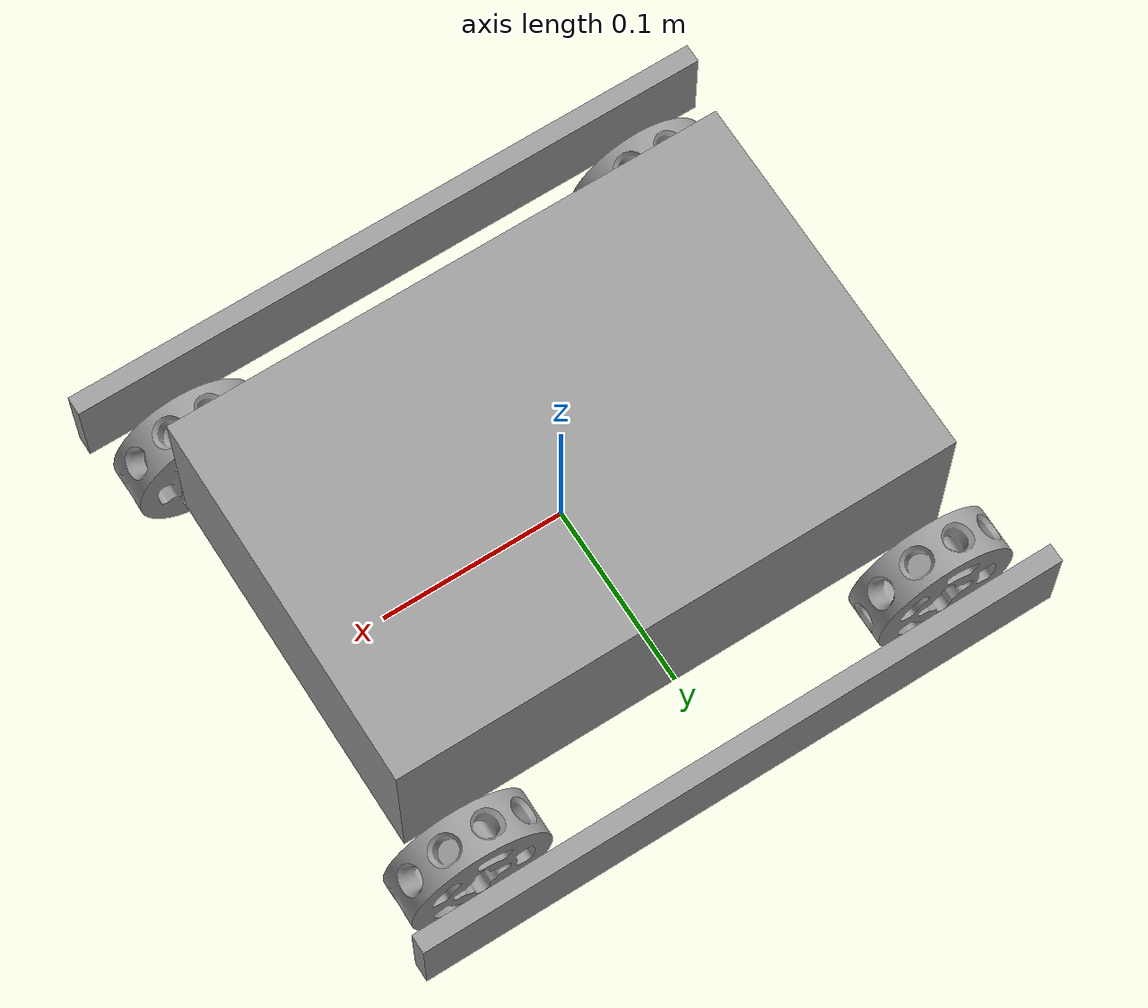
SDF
<?xml version='1.0'?>
<sdf version='1.5'>
  <model name='simple_car'>
    <link name='chasis'>
      <pose frame=''>0 0 0.05 0 -0 0</pose>
      <inertial>
        <mass>1</mass>
        <inertia>
          <ixx>0.166667</ixx>
          <ixy>0</ixy>
          <ixz>0</ixz>
          <iyy>0.166667</iyy>
          <iyz>0</iyz>
          <izz>0.166667</izz>
        </inertia>
        <pose frame=''>0 0 0 0 -0 0</pose>
      </inertial>
      <self_collide>0</self_collide>
      <kinematic>0</kinematic>
      <gravity>1</gravity>
      <visual name='visual'>
        <geometry>
          <box>
            <size>0.3 0.2 0.1</size>
          </box>
        </geometry>
        <material>
          <script>
            <name>Gazebo/Grey</name>
            <uri>file://media/materials/scripts/gazebo.material</uri>
          </script>
          <ambient>0.3 0.3 0.3 1</ambient>
          <diffuse>0.7 0.7 0.7 1</diffuse>
          <specular>0.01 0.01 0.01 1</specular>
          <emissive>0 0 0 1</emissive>
          <shader type='vertex'>
            <normal_map>__default__</normal_map>
          </shader>
        </material>
        <pose frame=''>0 0 0 0 -0 0</pose>
        <cast_shadows>1</cast_shadows>
        <transparency>0</transparency>
      </visual>
      <collision name='collision'>
        <laser_retro>0</laser_retro>
        <max_contacts>10</max_contacts>
        <pose frame=''>0 0 0 0 -0 0</pose>
        <geometry>
          <box>
            <size>0.3 0.2 0.1</size>
          </box>
        </geometry>
      </collision>
    </link>

    <link name='drum_0'>
      <pose frame=''> 0.13 -0.12 0 1.5707 0 0</pose>
      <gravity>1</gravity>
      <self_collide>1</self_collide>
      <kinematic>0</kinematic>
      <inertial>
        <mass>1</mass>
        <inertia>
          <ixx>1</ixx>
          <ixy>0</ixy>
          <ixz>0</ixz>
          <iyy>1</iyy>
          <iyz>0</iyz>
          <izz>1</izz>
        </inertia>
      </inertial>
      <visual name='visual'>
        <pose frame=''>-0.0375 -0.0375 -0.034 0 -0 0</pose>
        <geometry>
          <mesh>
            <uri>model://track_drum/meshes/drum.STL</uri>
            <scale>0.001 0.001 0.001</scale>
          </mesh>
        </geometry>
        <material>
          <lighting>1</lighting>
          <script>
            <uri>file://media/materials/scripts/gazebo.material</uri>
            <name>Gazebo/Grey</name>
          </script>
          <ambient>0.3 0.3 0.3 1</ambient>
          <diffuse>0.7 0.7 0.7 1</diffuse>
          <specular>0.01 0.01 0.01 1</specular>
          <emissive>0 0 0 1</emissive>
          <shader type='vertex'>
            <normal_map>__default__</normal_map>
          </shader>
        </material>
        <cast_shadows>1</cast_shadows>
        <transparency>0</transparency>
      </visual>
      <collision name='collision'>
        <laser_retro>0</laser_retro>
        <max_contacts>20</max_contacts>
        <pose frame=''>-0.0375 -0.0375 -0.034 0 -0 0</pose>
        <geometry>
          <mesh>
            <uri>model://track_drum/meshes/drum.STL</uri>
            <scale>0.001 0.001 0.001</scale>
          </mesh>
        </geometry>
        <surface>
          <friction>
            <ode>
              <mu>1</mu>
              <mu2>1</mu2>
              <fdir1>0 0 0</fdir1>
              <slip1>0</slip1>
              <slip2>0</slip2>
            </ode>
          </friction>
          <bounce>
            <restitution_coefficient>0</restitution_coefficient>
            <threshold>1</threshold>
          </bounce>
          <contact>
            <collide_without_contact>0</collide_without_contact>
            <collide_without_contact_bitmask>1</collide_without_contact_bitmask>
            <collide_bitmask>1</collide_bitmask>
            <ode>
              <soft_cfm>0.1</soft_cfm>
              <soft_erp>0.2</soft_erp>
              <kp>1e+13</kp>
              <kd>1</kd>
              <max_vel>0.01</max_vel>
              <min_depth>0</min_depth>
            </ode>
            <bullet>
              <split_impulse>1</split_impulse>
              <split_impulse_penetration_threshold>-0.01</split_impulse_penetration_threshold>
              <soft_cfm>0</soft_cfm>
              <soft_erp>0.2</soft_erp>
              <kp>1e+13</kp>
              <kd>1</kd>
            </bullet>
          </contact>
        </surface>
      </collision>
    </link>

    <link name='drum_1'>
      <pose frame=''>-0.13 -0.12 0 1.5707 0 0</pose>
      <gravity>1</gravity>
      <self_collide>1</self_collide>
      <kinematic>0</kinematic>
      <inertial>
        <mass>1</mass>
        <inertia>
          <ixx>1</ixx>
          <ixy>0</ixy>
          <ixz>0</ixz>
          <iyy>1</iyy>
          <iyz>0</iyz>
          <izz>1</izz>
        </inertia>
      </inertial>
      <visual name='visual'>
        <pose frame=''>-0.0375 -0.0375 -0.034 0 -0 0</pose>
        <geometry>
          <mesh>
            <uri>model://track_drum/meshes/drum.STL</uri>
            <scale>0.001 0.001 0.001</scale>
          </mesh>
        </geometry>
        <material>
          <lighting>1</lighting>
          <script>
            <uri>file://media/materials/scripts/gazebo.material</uri>
            <name>Gazebo/Grey</name>
          </script>
          <ambient>0.3 0.3 0.3 1</ambient>
          <diffuse>0.7 0.7 0.7 1</diffuse>
          <specular>0.01 0.01 0.01 1</specular>
          <emissive>0 0 0 1</emissive>
          <shader type='vertex'>
            <normal_map>__default__</normal_map>
          </shader>
        </material>
        <cast_shadows>1</cast_shadows>
        <transparency>0</transparency>
      </visual>
      <collision name='collision'>
        <laser_retro>0</laser_retro>
        <max_contacts>20</max_contacts>
        <pose frame=''>-0.0375 -0.0375 -0.034 0 -0 0</pose>
        <geometry>
          <mesh>
            <uri>model://track_drum/meshes/drum.STL</uri>
            <scale>0.001 0.001 0.001</scale>
          </mesh>
        </geometry>
        <surface>
          <friction>
            <ode>
              <mu>1</mu>
              <mu2>1</mu2>
              <fdir1>0 0 0</fdir1>
              <slip1>0</slip1>
              <slip2>0</slip2>
            </ode>
          </friction>
          <bounce>
            <restitution_coefficient>0</restitution_coefficient>
            <threshold>1</threshold>
          </bounce>
          <contact>
            <collide_without_contact>0</collide_without_contact>
            <collide_without_contact_bitmask>1</collide_without_contact_bitmask>
            <collide_bitmask>1</collide_bitmask>
            <ode>
              <soft_cfm>0.1</soft_cfm>
              <soft_erp>0.2</soft_erp>
              <kp>1e+13</kp>
              <kd>1</kd>
              <max_vel>0.01</max_vel>
              <min_depth>0</min_depth>
            </ode>
            <bullet>
              <split_impulse>1</split_impulse>
              <split_impulse_penetration_threshold>-0.01</split_impulse_penetration_threshold>
              <soft_cfm>0</soft_cfm>
              <soft_erp>0.2</soft_erp>
              <kp>1e+13</kp>
              <kd>1</kd>
            </bullet>
          </contact>
        </surface>
      </collision>
    </link>

    <link name='drum_2'>
      <pose frame=''> 0.13  0.12 0 1.5707 0 3.14159</pose>
      <gravity>1</gravity>
      <self_collide>1</self_collide>
      <kinematic>0</kinematic>
      <inertial>
        <mass>1</mass>
        <inertia>
          <ixx>1</ixx>
          <ixy>0</ixy>
          <ixz>0</ixz>
          <iyy>1</iyy>
          <iyz>0</iyz>
          <izz>1</izz>
        </inertia>
      </inertial>
      <visual name='visual'>
        <pose frame=''>-0.0375 -0.0375 -0.034 0 -0 0</pose>
        <geometry>
          <mesh>
            <uri>model://track_drum/meshes/drum.STL</uri>
            <scale>0.001 0.001 0.001</scale>
          </mesh>
        </geometry>
        <material>
          <lighting>1</lighting>
          <script>
            <uri>file://media/materials/scripts/gazebo.material</uri>
            <name>Gazebo/Grey</name>
          </script>
          <ambient>0.3 0.3 0.3 1</ambient>
          <diffuse>0.7 0.7 0.7 1</diffuse>
          <specular>0.01 0.01 0.01 1</specular>
          <emissive>0 0 0 1</emissive>
          <shader type='vertex'>
            <normal_map>__default__</normal_map>
          </shader>
        </material>
        <cast_shadows>1</cast_shadows>
        <transparency>0</transparency>
      </visual>
      <collision name='collision'>
        <laser_retro>0</laser_retro>
        <max_contacts>20</max_contacts>
        <pose frame=''>-0.0375 -0.0375 -0.034 0 -0 0</pose>
        <geometry>
          <mesh>
            <uri>model://track_drum/meshes/drum.STL</uri>
            <scale>0.001 0.001 0.001</scale>
          </mesh>
        </geometry>
        <surface>
          <friction>
            <ode>
              <mu>1</mu>
              <mu2>1</mu2>
              <fdir1>0 0 0</fdir1>
              <slip1>0</slip1>
              <slip2>0</slip2>
            </ode>
          </friction>
          <bounce>
            <restitution_coefficient>0</restitution_coefficient>
            <threshold>1</threshold>
          </bounce>
          <contact>
            <collide_without_contact>0</collide_without_contact>
            <collide_without_contact_bitmask>1</collide_without_contact_bitmask>
            <collide_bitmask>1</collide_bitmask>
            <ode>
              <soft_cfm>0.1</soft_cfm>
              <soft_erp>0.2</soft_erp>
              <kp>1e+13</kp>
              <kd>1</kd>
              <max_vel>0.01</max_vel>
              <min_depth>0</min_depth>
            </ode>
            <bullet>
              <split_impulse>1</split_impulse>
              <split_impulse_penetration_threshold>-0.01</split_impulse_penetration_threshold>
              <soft_cfm>0</soft_cfm>
              <soft_erp>0.2</soft_erp>
              <kp>1e+13</kp>
              <kd>1</kd>
            </bullet>
          </contact>
        </surface>
      </collision>
    </link>

    <link name='drum_3'>
      <pose frame=''>-0.13  0.12 0 1.5707 0 3.14159</pose>
      <gravity>1</gravity>
      <self_collide>1</self_collide>
      <kinematic>0</kinematic>
      <inertial>
        <mass>1</mass>
        <inertia>
          <ixx>1</ixx>
          <ixy>0</ixy>
          <ixz>0</ixz>
          <iyy>1</iyy>
          <iyz>0</iyz>
          <izz>1</izz>
        </inertia>
      </inertial>
      <visual name='visual'>
        <pose frame=''>-0.0375 -0.0375 -0.034 0 -0 0</pose>
        <geometry>
          <mesh>
            <uri>model://track_drum/meshes/drum.STL</uri>
            <scale>0.001 0.001 0.001</scale>
          </mesh>
        </geometry>
        <material>
          <lighting>1</lighting>
          <script>
            <uri>file://media/materials/scripts/gazebo.material</uri>
            <name>Gazebo/Grey</name>
          </script>
          <ambient>0.3 0.3 0.3 1</ambient>
          <diffuse>0.7 0.7 0.7 1</diffuse>
          <specular>0.01 0.01 0.01 1</specular>
          <emissive>0 0 0 1</emissive>
          <shader type='vertex'>
            <normal_map>__default__</normal_map>
          </shader>
        </material>
        <cast_shadows>1</cast_shadows>
        <transparency>0</transparency>
      </visual>
      <collision name='collision'>
        <laser_retro>0</laser_retro>
        <max_contacts>20</max_contacts>
        <pose frame=''>-0.0375 -0.0375 -0.034 0 -0 0</pose>
        <geometry>
          <mesh>
            <uri>model://track_drum/meshes/drum.STL</uri>
            <scale>0.001 0.001 0.001</scale>
          </mesh>
        </geometry>
        <surface>
          <friction>
            <ode>
              <mu>1</mu>
              <mu2>1</mu2>
              <fdir1>0 0 0</fdir1>
              <slip1>0</slip1>
              <slip2>0</slip2>
            </ode>
          </friction>
          <bounce>
            <restitution_coefficient>0</restitution_coefficient>
            <threshold>1</threshold>
          </bounce>
          <contact>
            <collide_without_contact>0</collide_without_contact>
            <collide_without_contact_bitmask>1</collide_without_contact_bitmask>
            <collide_bitmask>1</collide_bitmask>
            <ode>
              <soft_cfm>0.1</soft_cfm>
              <soft_erp>0.2</soft_erp>
              <kp>1e+13</kp>
              <kd>1</kd>
              <max_vel>0.01</max_vel>
              <min_depth>0</min_depth>
            </ode>
            <bullet>
              <split_impulse>1</split_impulse>
              <split_impulse_penetration_threshold>-0.01</split_impulse_penetration_threshold>
              <soft_cfm>0</soft_cfm>
              <soft_erp>0.2</soft_erp>
              <kp>1e+13</kp>
              <kd>1</kd>
            </bullet>
          </contact>
        </surface>
      </collision>
    </link>

    <link name='left_block'>
      <pose frame=''>0 -0.155 0.02 0 -0 0</pose>
      <inertial>
        <mass>1</mass>
        <inertia>
          <ixx>0.166667</ixx>
          <ixy>0</ixy>
          <ixz>0</ixz>
          <iyy>0.166667</iyy>
          <iyz>0</iyz>
          <izz>0.166667</izz>
        </inertia>
        <pose frame=''>0 0 0 0 -0 0</pose>
      </inertial>
      <self_collide>0</self_collide>
      <kinematic>0</kinematic>
      <gravity>1</gravity>
      <visual name='visual'>
        <geometry>
          <box>
            <size>0.35 0.01 0.05</size>
          </box>
        </geometry>
        <material>
          <script>
            <name>Gazebo/Grey</name>
            <uri>file://media/materials/scripts/gazebo.material</uri>
          </script>
          <ambient>0.3 0.3 0.3 1</ambient>
          <diffuse>0.7 0.7 0.7 1</diffuse>
          <specular>0.01 0.01 0.01 1</specular>
          <emissive>0 0 0 1</emissive>
          <shader type='vertex'>
            <normal_map>__default__</normal_map>
          </shader>
        </material>
        <pose frame=''>0 0 0 0 -0 0</pose>
        <cast_shadows>1</cast_shadows>
        <transparency>0</transparency>
      </visual>
      <collision name='collision'>
        <laser_retro>0</laser_retro>
        <max_contacts>10</max_contacts>
        <pose frame=''>0 0 0 0 -0 0</pose>
        <geometry>
          <box>
            <size>0.35 0.01 0.05</size>
          </box>
        </geometry>
      </collision>
    </link>

    <link name='right_block'>
      <pose frame=''>0 0.155 0.02 0 -0 0</pose>
      <inertial>
        <mass>1</mass>
        <inertia>
          <ixx>0.166667</ixx>
          <ixy>0</ixy>
          <ixz>0</ixz>
          <iyy>0.166667</iyy>
          <iyz>0</iyz>
          <izz>0.166667</izz>
        </inertia>
        <pose frame=''>0 0 0 0 -0 0</pose>
      </inertial>
      <self_collide>0</self_collide>
      <kinematic>0</kinematic>
      <gravity>1</gravity>
      <visual name='visual'>
        <geometry>
          <box>
            <size>0.35 0.01 0.05</size>
          </box>
        </geometry>
        <material>
          <script>
            <name>Gazebo/Grey</name>
            <uri>file://media/materials/scripts/gazebo.material</uri>
          </script>
          <ambient>0.3 0.3 0.3 1</ambient>
          <diffuse>0.7 0.7 0.7 1</diffuse>
          <specular>0.01 0.01 0.01 1</specular>
          <emissive>0 0 0 1</emissive>
          <shader type='vertex'>
            <normal_map>__default__</normal_map>
          </shader>
        </material>
        <pose frame=''>0 0 0 0 -0 0</pose>
        <cast_shadows>1</cast_shadows>
        <transparency>0</transparency>
      </visual>
      <collision name='collision'>
        <laser_retro>0</laser_retro>
        <max_contacts>10</max_contacts>
        <pose frame=''>0 0 0 0 -0 0</pose>
        <geometry>
          <box>
            <size>0.35 0.01 0.05</size>
          </box>
        </geometry>
      </collision>
    </link>

    <joint name="left_block_joint" type="fixed">
      <pose>0 0 0 0 0 0</pose>
      <child>left_block</child>
      <parent>chasis</parent>
      <axis>
          <xyz>0 0 1</xyz>
      </axis>
    </joint>

    <joint name="right_block_joint" type="fixed">
      <pose>0 0 0 0 0 0</pose>
      <child>right_block</child>
      <parent>chasis</parent>
      <axis>
          <xyz>0 0 1</xyz>
      </axis>
    </joint>

    <joint name="joint_0" type="revolute">
      <pose>0 0 -0.015 0 0 0</pose>
      <child>drum_0</child>
      <parent>chasis</parent>
      <axis>
          <xyz>0 0 1</xyz>
      </axis>
    </joint>
    <joint name="joint_1" type="revolute">
      <pose>0 0 -0.015 0 0 0</pose>
      <child>drum_1</child>
      <parent>chasis</parent>
      <axis>
          <xyz>0 0 1</xyz>
      </axis>
    </joint>
    <joint name="joint_2" type="revolute">
      <pose>0 0 -0.015 0 0 0</pose>
      <child>drum_2</child>
      <parent>chasis</parent>
      <axis>
          <xyz>0 0 1</xyz>
      </axis>
    </joint>
    <joint name="joint_3" type="revolute">
      <pose>0 0 -0.015 0 0 0</pose>
      <child>drum_3</child>
      <parent>chasis</parent>
      <axis>
          <xyz>0 0 1</xyz>
      </axis>
    </joint>

    <static>0</static>
    <allow_auto_disable>1</allow_auto_disable>

    </model>
</sdf>
